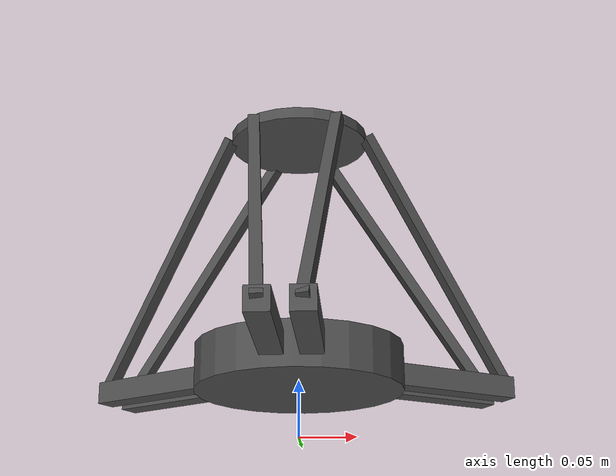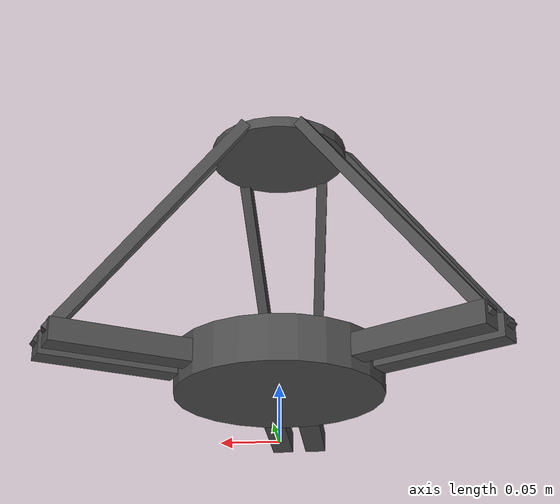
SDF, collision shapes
<?xml version="1.0" encoding="UTF-8"?>
<sdf version='1.9'>
  <model name='stewart_platform_fixed'>

      <include>
        <uri>model://stewart_platform</uri>
        <name>stewart_platform</name>
        <pose>0 0 0.04  0 0 0</pose>
      </include>

      <joint name="world_joint" type="fixed">
        <pose>0 0 0 0 0 0</pose>
        <parent>world</parent>
        <child>stewart_platform::link</child>
      </joint>

  </model>
</sdf>

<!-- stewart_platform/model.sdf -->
<sdf version="1.4">
<model name="stewart_platform">

  <plugin name="joint_controller" filename="libjoint_controller.so"/>

  <joint name="proximal_link_1_joint" type="revolute">
		<parent>base_link</parent>
		<child>proximal_link_1</child>
		<pose>-0.06 0 0 0 0 0</pose>
		<axis>
			<xyz>0.5000001943375613 -0.8660252915835662 0</xyz>
      <limit>
				<lower> -0.785398 </lower>
				<upper> 1.57079 </upper>
				<velocity> 1 </velocity>
			</limit>
      <dynamics>
      <damping>0.4</damping>
      <friction>0.04</friction>
    </dynamics>
		</axis>
	</joint>

  <joint name="proximal_link_2_joint" type="revolute">
		<parent>base_link</parent>
		<child>proximal_link_2</child>
		<pose>-0.06 0 0 0 0 0</pose>
		<axis>
			<xyz>0.5000001943375613 -0.8660252915835662 0</xyz>
      <limit>
				<lower> -0.785398 </lower>
				<upper> 1.57079 </upper>
				<velocity> 1 </velocity>
			</limit>
      <dynamics>
        <damping>0.4</damping>
        <friction>0.04</friction>
      </dynamics>
		</axis>
	</joint>

	<joint name="proximal_link_3_joint" type="revolute">
		<parent>base_link</parent>
		<child>proximal_link_3</child>
		<pose>-0.06 0 0 0 0 0</pose>
		<axis>
			<xyz>0.5000001943375613 0.8660252915835662 0</xyz>
      <limit>
				<lower> -0.785398 </lower>
				<upper> 1.57079 </upper>
				<velocity> 1 </velocity>
			</limit>
      <dynamics>
      <damping>0.4</damping>
      <friction>0.04</friction>
    </dynamics>
		</axis>
	</joint>

  <joint name="proximal_link_4_joint" type="revolute">
		<parent>base_link</parent>
		<child>proximal_link_4</child>
		<pose>-0.06 0 0 0 0 0</pose>
		<axis>
			<xyz>0.5000001943375613 0.8660252915835662 0</xyz>
      <limit>
				<lower> -0.785398 </lower>
				<upper> 1.57079 </upper>
				<velocity> 1 </velocity>
			</limit>
      <dynamics>
      <damping>0.4</damping>
      <friction>0.04</friction>
    </dynamics>
		</axis>
	</joint>

	<joint name="proximal_link_5_joint" type="revolute">
		<parent>base_link</parent>
		<child>proximal_link_5</child>
		<pose>-0.06 0 0 0 0 0</pose>
		<axis>
			<xyz>-1 0 0</xyz>
      <limit>
				<lower> -0.785398 </lower>
				<upper> 1.57079 </upper>
				<velocity> 1 </velocity>
			</limit>
      <dynamics>
      <damping>0.4</damping>
      <friction>0.04</friction>
    </dynamics>
		</axis>
	</joint>

  <joint name="proximal_link_6_joint" type="revolute">
		<parent>base_link</parent>
		<child>proximal_link_6</child>
		<pose>-0.06 0 0 0 0 0</pose>
		<axis>
			<xyz>-1 0 0</xyz>
      <limit>
				<lower> -0.785398 </lower>
				<upper> 1.57079 </upper>
				<velocity> 1 </velocity>
			</limit>
      <dynamics>
      <damping>0.4</damping>
      <friction>0.04</friction>
    </dynamics>
		</axis>
	</joint>

  <joint name="distal_link_1_joint" type="ball">
		<parent>proximal_link_1</parent>
		<child>distal_link_1</child>
		<pose> 0.135345 0 0 0 0 0</pose>
		<axis>
    <xyz>0 0 1</xyz>
      <dynamics>
      <damping>0.4</damping>
      <friction>0.04</friction>
    </dynamics>
		</axis>
    <axis2>
    <xyz>0 1 0</xyz>
      <dynamics>
      <damping>0.4</damping>
      <friction>0.04</friction>
    </dynamics>
		</axis2>
	</joint>

  <joint name="distal_link_2_joint" type="ball">
		<parent>proximal_link_2</parent>
		<child>distal_link_2</child>
		<pose> 0.135345 0 0 0 0 0</pose>
		<axis>
    <xyz>0 0 1</xyz>
      <dynamics>
      <damping>0.4</damping>
      <friction>0.04</friction>
    </dynamics>
		</axis>
    <axis2>
    <xyz>0 1 0</xyz>
      <dynamics>
      <damping>0.4</damping>
      <friction>0.04</friction>
    </dynamics>
		</axis2>
	</joint>

  <joint name="distal_link_3_joint" type="ball">
		<parent>proximal_link_3</parent>
		<child>distal_link_3</child>
		<pose> 0.135345 0 0 0 0 0</pose>
		<axis>
    <xyz>0 0 1</xyz>
      <dynamics>
      <damping>0.4</damping>
      <friction>0.04</friction>
    </dynamics>
		</axis>
    <axis2>
    <xyz>0 1 0</xyz>
      <dynamics>
      <damping>0.4</damping>
      <friction>0.04</friction>
    </dynamics>
		</axis2>
	</joint>

  <joint name="distal_link_4_joint" type="ball">
		<parent>proximal_link_4</parent>
		<child>distal_link_4</child>
		<pose> 0.135345 0 0 0 0 0</pose>
		<axis>
    <xyz>0 0 1</xyz>
      <dynamics>
      <damping>0.4</damping>
      <friction>0.04</friction>
    </dynamics>
		</axis>
    <axis2>
    <xyz>0 1 0</xyz>
      <dynamics>
      <damping>0.4</damping>
      <friction>0.04</friction>
    </dynamics>
		</axis2>
	</joint>

  <joint name="distal_link_5_joint" type="ball">
		<parent>proximal_link_5</parent>
		<child>distal_link_5</child>
		<pose> 0.135345 0 0 0 0 0</pose>
		<axis>
    <xyz>0 0 1</xyz>
      <dynamics>
      <damping>0.4</damping>
      <friction>0.04</friction>
    </dynamics>
		</axis>
    <axis2>
    <xyz>0 1 0</xyz>
      <dynamics>
      <damping>0.4</damping>
      <friction>0.04</friction>
    </dynamics>
		</axis2>
	</joint>

  <joint name="distal_link_6_joint" type="ball">
		<parent>proximal_link_6</parent>
		<child>distal_link_6</child>
		<pose> 0.135345 0 0 0 0 0</pose>
		<axis>
    <xyz>0 0 1</xyz>
      <dynamics>
      <damping>0.4</damping>
      <friction>0.04</friction>
    </dynamics>
		</axis>
    <axis2>
    <xyz>0 1 0</xyz>
      <dynamics>
      <damping>0.4</damping>
      <friction>0.04</friction>
    </dynamics>
		</axis2>
	</joint>

  <joint name="platform_link_1_joint" type="ball">
		<parent>distal_link_1</parent>
		<child>platform_link</child>
		<pose>0.06205127186683686 -0.007475938717505671 0 0 0 0</pose>
	</joint>

  <joint name="platform_link_2_joint" type="ball">
		<parent>distal_link_2</parent>
		<child>platform_link</child>
		<pose>0.02455125729151977 0.0574759581512618 0 0 0 0</pose>
	</joint>

  <joint name="platform_link_3_joint" type="ball">
		<parent>distal_link_3</parent>
		<child>platform_link</child>
		<pose>-0.02455125729151977 0.0574759581512618 0 0 0 0</pose>
	</joint>

  <joint name="platform_link_4_joint" type="ball">
		<parent>distal_link_4</parent>
		<child>platform_link</child>
		<pose>-0.06205127186683686 -0.007475938717505671 0 0 0 0</pose>
	</joint>

  <joint name="platform_link_5_joint" type="ball">
		<parent>distal_link_5</parent>
		<child>platform_link</child>
		<pose>-0.0375 -0.05 0 0 0 0</pose>
	</joint>

  <joint name="platform_link_6_joint" type="ball">
		<parent>distal_link_6</parent>
		<child>platform_link</child>
		<pose>0.0375 -0.05 0 0 0 0</pose>
  </joint>

  <joint name="nozzle_joint" type="fixed">
		<parent>platform_link</parent>
		<child>nozzle</child>
		<pose>0 0 0 0 0 0</pose>
	</joint>

  <link name="nozzle">
    <pose>0 0 0.2873294183952094 0 0 0</pose>
    <inertial>
    <mass>0.1</mass>
    <inertia>
      <ixx>9.333330000000002e-05</ixx>
      <ixy>0.0</ixy>
      <ixz>0.0</ixz>
      <iyy>9.333330000000002e-05</iyy>
      <iyz>0.0</iyz>
      <izz>2.0e-05</izz>
    </inertia>
    </inertial>
    <visual name="visual">
    <pose>0 0 0 0 0 0</pose>
      <geometry>
        <cylinder>
          <radius>0.02</radius>
          <length>0.1</length>
        </cylinder>
      </geometry>
      <material>
      <script>
        <name>Gazebo/Red</name>
        <uri>file://media/materials/scripts/gazebo.material</uri>
      </script>
      <shader type='pixel'>
        <normal_map>__default__</normal_map>
      </shader>
      <ambient>0.175 0.175 0.175 1</ambient>
      <diffuse>0.175 0.175 0.175 1</diffuse>
      <specular>0.175 0.175 0.175 1</specular>
      <emissive>0 0 0 1</emissive>
    </material>
    </visual>
  </link>

  <link name="base_link">
    <pose>0 0 0.02 0 0 0</pose>
    <inertial>
    <mass>0.1</mass>
    <inertia>
      <ixx>0.00021583332799999998</ixx>
      <ixy>0.0</ixy>
      <ixz>0.0</ixz>
      <iyy>0.00021583332799999998</iyy>
      <iyz>0.0</iyz>
      <izz>0.000405</izz>
    </inertia>
    </inertial>
    <collision name="collision">
      <geometry>
        <cylinder>
          <radius>0.0915</radius>
          <length>0.04</length>
        </cylinder>
      </geometry>
    </collision>
    <visual name="visual">
    <pose>-0.124 0.105 -0.02 0 0 -1.5708</pose>
      <geometry>
        <mesh>
          <uri>model://stewart_platform/meshes/Stuart_base.dae</uri>
          <scale> 0.001 0.001 0.001 </scale>
        </mesh>
      </geometry>
      <material>
      <script>
        <name>Gazebo/DarkGrey</name>
        <uri>file://media/materials/scripts/gazebo.material</uri>
      </script>
      <shader type='pixel'>
        <normal_map>__default__</normal_map>
      </shader>
      <ambient>0.175 0.175 0.175 1</ambient>
      <diffuse>0.175 0.175 0.175 1</diffuse>
      <specular>0.175 0.175 0.175 1</specular>
      <emissive>0 0 0 1</emissive>
    </material>
    </visual>
  </link>

  <link name="proximal_link_1">
    <pose>0.13815379694410468 0.06071061183950534 0.02 0 0 0.523599</pose>
    <inertial>
      <mass>0.02</mass>
      <inertia>
        <ixx>1.33333328e-06</ixx>
        <ixy>0.0</ixy>
        <ixz>0.0</ixz>
        <iyy>2.4666665679999998e-05</iyy>
        <iyz>0.0</iyz>
        <izz>2.4666665679999998e-05</izz>
      </inertia>
    </inertial>
    <collision name="collision">
      <geometry>
        <box>
          <size>0.12 0.02 0.02</size>
        </box>
      </geometry>
    </collision>
    <visual name="visual">
      <geometry>
        <box>
          <size>0.12 0.02 0.02</size>
        </box>
      </geometry>
      <material>
      <script>
        <name>Gazebo/DarkGrey</name>
        <uri>file://media/materials/scripts/gazebo.material</uri>
      </script>
      <shader type='pixel'>
        <normal_map>__default__</normal_map>
      </shader>
      <ambient>0.175 0.175 0.175 1</ambient>
      <diffuse>0.175 0.175 0.175 1</diffuse>
      <specular>0.175 0.175 0.175 1</specular>
      <emissive>0 0 0 1</emissive>
    </material>
    </visual>
  </link>

  <link name="proximal_link_2">
    <pose>0.12165379053096516 0.08928944646176303 0.02 0 0 0.523599</pose>
    <inertial>
    <mass>0.02</mass>
    <inertia>
      <ixx>1.33333328e-06</ixx>
      <ixy>0.0</ixy>
      <ixz>0.0</ixz>
      <iyy>2.4666665679999998e-05</iyy>
      <iyz>0.0</iyz>
      <izz>2.4666665679999998e-05</izz>
    </inertia>
    </inertial>
    <collision name="collision">
      <geometry>
        <box>
          <size>0.12 0.02 0.02</size>
        </box>
      </geometry>
    </collision>
    <visual name = "visual">
      <geometry>
        <box>
          <size>0.12 0.02 0.02</size>
        </box>
      </geometry>
      <material>
      <script>
        <name>Gazebo/DarkGrey</name>
        <uri>file://media/materials/scripts/gazebo.material</uri>
      </script>
      <shader type='pixel'>
        <normal_map>__default__</normal_map>
      </shader>
      <ambient>0.175 0.175 0.175 1</ambient>
      <diffuse>0.175 0.175 0.175 1</diffuse>
      <specular>0.175 0.175 0.175 1</specular>
      <emissive>0 0 0 1</emissive>
    </material>
    </visual>
  </link>

  <link name="proximal_link_3">
    <pose>-0.12165379053096516 0.08928944646176303 0.02 0 0 2.61799</pose>
    <inertial>
    <mass>0.02</mass>
    <inertia>
      <ixx>1.33333328e-06</ixx>
      <ixy>0.0</ixy>
      <ixz>0.0</ixz>
      <iyy>2.4666665679999998e-05</iyy>
      <iyz>0.0</iyz>
      <izz>2.4666665679999998e-05</izz>
    </inertia>
    </inertial>
    <collision name="collision">
      <geometry>
        <box>
          <size>0.12 0.02 0.02</size>
        </box>
      </geometry>
    </collision>
    <visual name = "visual">
      <geometry>
        <box>
          <size>0.12 0.02 0.02</size>
        </box>
      </geometry>
      <material>
      <script>
        <name>Gazebo/DarkGrey</name>
        <uri>file://media/materials/scripts/gazebo.material</uri>
      </script>
      <shader type='pixel'>
        <normal_map>__default__</normal_map>
      </shader>
      <ambient>0.175 0.175 0.175 1</ambient>
      <diffuse>0.175 0.175 0.175 1</diffuse>
      <specular>0.175 0.175 0.175 1</specular>
      <emissive>0 0 0 1</emissive>
    </material>
    </visual>
  </link>

  <link name="proximal_link_4">
    <pose>-0.13815379694410468 0.06071061183950534 0.02 0 0 2.61799</pose>
    <inertial>
    <mass>0.02</mass>
    <inertia>
      <ixx>1.33333328e-06</ixx>
      <ixy>0.0</ixy>
      <ixz>0.0</ixz>
      <iyy>2.4666665679999998e-05</iyy>
      <iyz>0.0</iyz>
      <izz>2.4666665679999998e-05</izz>
    </inertia>
    </inertial>
    <collision name="collision">
      <geometry>
        <box>
          <size>0.12 0.02 0.02</size>
        </box>
      </geometry>
    </collision>
    <visual name = "visual">
      <geometry>
        <box>
          <size>0.12 0.02 0.02</size>
        </box>
      </geometry>
      <material>
      <script>
        <name>Gazebo/DarkGrey</name>
        <uri>file://media/materials/scripts/gazebo.material</uri>
      </script>
      <shader type='pixel'>
        <normal_map>__default__</normal_map>
      </shader>
      <ambient>0.175 0.175 0.175 1</ambient>
      <diffuse>0.175 0.175 0.175 1</diffuse>
      <specular>0.175 0.175 0.175 1</specular>
      <emissive>0 0 0 1</emissive>
    </material>
    </visual>
  </link>

  <link name="proximal_link_5">
    <pose>-0.0165 -0.15 0.02 0 0 4.71239</pose>
    <inertial>
    <mass>0.02</mass>
    <inertia>
      <ixx>1.33333328e-06</ixx>
      <ixy>0.0</ixy>
      <ixz>0.0</ixz>
      <iyy>2.4666665679999998e-05</iyy>
      <iyz>0.0</iyz>
      <izz>2.4666665679999998e-05</izz>
    </inertia>
    </inertial>
    <collision name="collision">
      <geometry>
        <box>
          <size>0.12 0.02 0.02</size>
        </box>
      </geometry>
    </collision>
    <visual name = "visual">
      <geometry>
        <box>
          <size>0.12 0.02 0.02</size>
        </box>
      </geometry>
      <material>
      <script>
        <name>Gazebo/DarkGrey</name>
        <uri>file://media/materials/scripts/gazebo.material</uri>
      </script>
      <shader type='pixel'>
        <normal_map>__default__</normal_map>
      </shader>
      <ambient>0.175 0.175 0.175 1</ambient>
      <diffuse>0.175 0.175 0.175 1</diffuse>
      <specular>0.175 0.175 0.175 1</specular>
      <emissive>0 0 0 1</emissive>
    </material>
    </visual>
  </link>

  <link name="proximal_link_6">
    <pose>0.0165 -0.15 0.02 0 0 4.71239</pose>
    <inertial>
    <mass>0.02</mass>
    <inertia>
      <ixx>1.33333328e-06</ixx>
      <ixy>0.0</ixy>
      <ixz>0.0</ixz>
      <iyy>2.4666665679999998e-05</iyy>
      <iyz>0.0</iyz>
      <izz>2.4666665679999998e-05</izz>
    </inertia>
    </inertial>
    <collision name="collision">
      <geometry>
        <box>
          <size>0.12 0.02 0.02</size>
        </box>
      </geometry>
    </collision>
    <visual name = "visual">
      <geometry>
        <box>
          <size>0.12 0.02 0.02</size>
        </box>
      </geometry>
      <material>
      <script>
        <name>Gazebo/DarkGrey</name>
        <uri>file://media/materials/scripts/gazebo.material</uri>
      </script>
      <shader type='pixel'>
        <normal_map>__default__</normal_map>
      </shader>
      <ambient>0.175 0.175 0.175 1</ambient>
      <diffuse>0.175 0.175 0.175 1</diffuse>
      <specular>0.175 0.175 0.175 1</specular>
      <emissive>0 0 0 1</emissive>
    </material>
    </visual>
  </link>

  <link name="distal_link_1">
    <gravity>false</gravity>
    <pose>0.12608329315297775 0.041617342391126674 0.12866470919760473 -1.4744678787260812 0.9361796638175959 0.6541030331103883</pose>
    <inertial>
    <mass>0.05</mass>
    <inertia>
      <ixx>6.25e-07</ixx>
      <ixy>0.0</ixy>
      <ixz>0.0</ixz>
      <iyy>0.00030561686162820643</iyy>
      <iyz>0.0</iyz>
      <izz>0.00030561686162820643</izz>
    </inertia>
    </inertial>
    <collision name="collision">
      <geometry>
        <box>
          <size>0.27069 0.01 0.01</size>
        </box>
      </geometry>
    </collision>
    <visual name = "visual">
      <pose> 0 0 0 0 1.57075 0 </pose>
      <geometry>
        <cylinder>
          <radius>0.005</radius>
          <length>0.27069</length>
        </cylinder>
      </geometry>
      <material>
      <script>
        <name>Gazebo/DarkGrey</name>
        <uri>file://media/materials/scripts/gazebo.material</uri>
      </script>
      <shader type='pixel'>
        <normal_map>__default__</normal_map>
      </shader>
      <ambient>0.175 0.175 0.175 1</ambient>
      <diffuse>0.175 0.175 0.175 1</diffuse>
      <specular>0.175 0.175 0.175 1</specular>
      <emissive>0 0 0 1</emissive>
    </material>
    </visual>
  </link>

  <link name="distal_link_2">
  <gravity>false</gravity>
    <pose>0.09908328265874945 0.08838270813663926 0.12866470919760473  -1.4744678787260812 0.9361796638175959 0.39309496688961176</pose>
    <inertial>
    <mass>0.05</mass>
    <inertia>
      <ixx>6.25e-07</ixx>
      <ixy>0.0</ixy>
      <ixz>0.0</ixz>
      <iyy>0.00030561686162820643</iyy>
      <iyz>0.0</iyz>
      <izz>0.00030561686162820643</izz>
    </inertia>
    </inertial>
    <collision name="collision">
      <geometry>
        <box>
          <size>0.27069 0.01 0.01</size>
        </box>
      </geometry>
    </collision>
    <visual name = "visual">
      <pose> 0 0 0 0 1.57075 0 </pose>
      <geometry>
        <cylinder>
          <radius>0.005</radius>
          <length>0.27069</length>
        </cylinder>
      </geometry>
      <material>
      <script>
        <name>Gazebo/DarkGrey</name>
        <uri>file://media/materials/scripts/gazebo.material</uri>
      </script>
      <shader type='pixel'>
        <normal_map>__default__</normal_map>
      </shader>
      <ambient>0.175 0.175 0.175 1</ambient>
      <diffuse>0.175 0.175 0.175 1</diffuse>
      <specular>0.175 0.175 0.175 1</specular>
      <emissive>0 0 0 1</emissive>
    </material>
    </visual>
  </link>

  <link name="distal_link_3">
  <gravity>false</gravity>
    <pose>-0.09908328265874945 0.08838270813663926 0.12866470919760473  -1.4744678787260812 0.9361796638175959 2.748494033110388</pose>
    <inertial>
    <mass>0.05</mass>
    <inertia>
      <ixx>6.25e-07</ixx>
      <ixy>0.0</ixy>
      <ixz>0.0</ixz>
      <iyy>0.00030561686162820643</iyy>
      <iyz>0.0</iyz>
      <izz>0.00030561686162820643</izz>
    </inertia>
    </inertial>
    <collision name="collision">
      <geometry>
        <box>
          <size>0.27069 0.01 0.01</size>
        </box>
      </geometry>
    </collision>
    <visual name = "visual">
      <pose> 0 0 0 0 1.57075 0 </pose>
      <geometry>
        <cylinder>
          <radius>0.005</radius>
          <length>0.27069</length>
        </cylinder>
      </geometry>
      <material>
      <script>
        <name>Gazebo/DarkGrey</name>
        <uri>file://media/materials/scripts/gazebo.material</uri>
      </script>
      <shader type='pixel'>
        <normal_map>__default__</normal_map>
      </shader>
      <ambient>0.175 0.175 0.175 1</ambient>
      <diffuse>0.175 0.175 0.175 1</diffuse>
      <specular>0.175 0.175 0.175 1</specular>
      <emissive>0 0 0 1</emissive>
    </material>
    </visual>
  </link>

  <link name="distal_link_4">
  <gravity>false</gravity>
    <pose>-0.12608329315297775 0.041617342391126674 0.12866470919760473  -1.4744678787260812 0.9361796638175959 2.4874859668896114</pose>
    <inertial>
    <mass>0.05</mass>
    <inertia>
      <ixx>6.25e-07</ixx>
      <ixy>0.0</ixy>
      <ixz>0.0</ixz>
      <iyy>0.00030561686162820643</iyy>
      <iyz>0.0</iyz>
      <izz>0.00030561686162820643</izz>
    </inertia>
    </inertial>
    <collision name="collision">
      <geometry>
        <box>
          <size>0.27069 0.01 0.01</size>
        </box>
      </geometry>
    </collision>
    <visual name = "visual">
      <pose> 0 0 0 0 1.57075 0 </pose>
      <geometry>
        <cylinder>
          <radius>0.005</radius>
          <length>0.27069</length>
        </cylinder>
      </geometry>
      <material>
      <script>
        <name>Gazebo/DarkGrey</name>
        <uri>file://media/materials/scripts/gazebo.material</uri>
      </script>
      <shader type='pixel'>
        <normal_map>__default__</normal_map>
      </shader>
      <ambient>0.175 0.175 0.175 1</ambient>
      <diffuse>0.175 0.175 0.175 1</diffuse>
      <specular>0.175 0.175 0.175 1</specular>
      <emissive>0 0 0 1</emissive>
    </material>
    </visual>
  </link>

  <link name="distal_link_5">
  <gravity>false</gravity>
    <pose>-0.027 -0.13 0.12866470919760473  -1.4744678787260812 0.9361796638175959 4.8428940331103885</pose>
    <inertial>
    <mass>0.05</mass>
    <inertia>
      <ixx>6.25e-07</ixx>
      <ixy>0.0</ixy>
      <ixz>0.0</ixz>
      <iyy>0.00030561686162820643</iyy>
      <iyz>0.0</iyz>
      <izz>0.00030561686162820643</izz>
    </inertia>
    </inertial>
    <collision name="collision">
      <geometry>
        <box>
          <size>0.27069 0.01 0.01</size>
        </box>
      </geometry>
    </collision>
    <visual name = "visual">
      <pose> 0 0 0 0 1.57075 0 </pose>
      <geometry>
        <cylinder>
          <radius>0.005</radius>
          <length>0.27069</length>
        </cylinder>
      </geometry>
      <material>
      <script>
        <name>Gazebo/DarkGrey</name>
        <uri>file://media/materials/scripts/gazebo.material</uri>
      </script>
      <shader type='pixel'>
        <normal_map>__default__</normal_map>
      </shader>
      <ambient>0.175 0.175 0.175 1</ambient>
      <diffuse>0.175 0.175 0.175 1</diffuse>
      <specular>0.175 0.175 0.175 1</specular>
      <emissive>0 0 0 1</emissive>
    </material>
    </visual>
  </link>

  <link name="distal_link_6">
  <gravity>false</gravity>
    <pose>0.027 -0.13 0.12866470919760473  -1.4744678787260812 0.9361796638175959 4.581885966889612</pose>
    <inertial>
    <mass>0.05</mass>
    <inertia>
      <ixx>6.25e-07</ixx>
      <ixy>0.0</ixy>
      <ixz>0.0</ixz>
      <iyy>0.00030561686162820643</iyy>
      <iyz>0.0</iyz>
      <izz>0.00030561686162820643</izz>
    </inertia>
    </inertial>
    <collision name="collision">
      <geometry>
        <box>
          <size>0.27069 0.01 0.01</size>
        </box>
      </geometry>
    </collision>
    <visual name = "visual">
      <pose> 0 0 0 0 1.57075 0 </pose>
      <geometry>
        <cylinder>
          <radius>0.005</radius>
          <length>0.27069</length>
        </cylinder>
      </geometry>
      <material>
      <script>
        <name>Gazebo/DarkGrey</name>
        <uri>file://media/materials/scripts/gazebo.material</uri>
      </script>
      <shader type='pixel'>
        <normal_map>__default__</normal_map>
      </shader>
      <ambient>0.175 0.175 0.175 1</ambient>
      <diffuse>0.175 0.175 0.175 1</diffuse>
      <specular>0.175 0.175 0.175 1</specular>
      <emissive>0 0 0 1</emissive>
    </material>
    </visual>
  </link>

  <link name="platform_link">
  <gravity>false</gravity>
    <pose>0 0 0.23732941839520943 0 0 0</pose>
    <inertial>
    <mass>0.12</mass>
    <inertia>
      <ixx>7.599999960000001e-05</ixx>
      <ixy>0.0</ixy>
      <ixz>0.0</ixz>
      <iyy>7.599999960000001e-05</iyy>
      <iyz>0.0</iyz>
      <izz>0.00015000000000000001</izz>
    </inertia>
    </inertial>
    <collision name="collision">
      <geometry>
        <cylinder>
          <radius>0.0625</radius>
          <length>0.01</length>
        </cylinder>
      </geometry>
    </collision>
    <visual name = "visual">
      <geometry>
        <cylinder>
          <radius>0.0625</radius>
          <length>0.01</length>
        </cylinder>
      </geometry>
      <material>
      <script>
        <name>Gazebo/DarkGrey</name>
        <uri>file://media/materials/scripts/gazebo.material</uri>
      </script>
      <shader type='pixel'>
        <normal_map>__default__</normal_map>
      </shader>
      <ambient>0.175 0.175 0.175 1</ambient>
      <diffuse>0.175 0.175 0.175 1</diffuse>
      <specular>0.175 0.175 0.175 1</specular>
      <emissive>0 0 0 1</emissive>
    </material>
    </visual>
  </link>

  <plugin name="p3d_base_controller" filename="libgazebo_ros_p3d.so">
  <alwaysOn>true</alwaysOn>
  <updateRate>100.0</updateRate>
  <bodyName>platform_link</bodyName>
  <topicName>ground_truth/tooltip</topicName>
  <gaussianNoise>0.0</gaussianNoise>
  <frameName>map</frameName>
  <xyzOffsets>0 0 0</xyzOffsets>
  <rpyOffsets>0 0 0</rpyOffsets>
</plugin>
</model>
</sdf>
